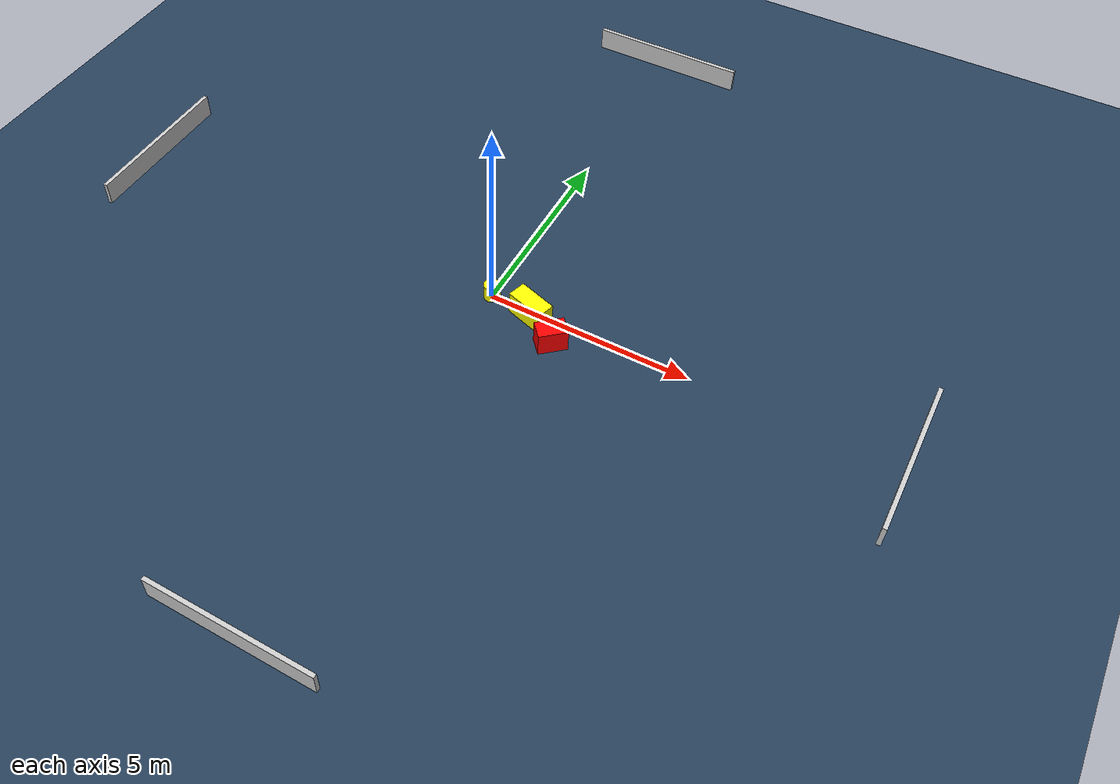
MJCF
<?xml version="1.0" ?>
<mujoco model="generated_environment">
  <option timestep="0.01" integrator="RK4" cone="elliptic"/>
  <default>
    <geom density="1"/>
  </default>
  <asset>
    <texture builtin="gradient" height="3072" name="skybox" rgb1="0.3 0.5 0.7" rgb2="0 0 0" type="skybox" width="512"/>
    <texture builtin="checker" height="300" name="groundplane" rgb1="0.2 0.3 0.4" rgb2="0.1 0.2 0.3" type="2d" width="300"/>
    <material name="groundplane" reflectance="0.2" texrepeat="5 5" texture="groundplane"/>
  </asset>
  <worldbody>
    <light dir="0 0 -1" directional="true" pos="0 0 1.5"/>
    <geom condim="3" friction="0.5 0.005 0.001" material="groundplane" name="floor" pos="0 0 0" size="0 0 0.05" type="plane"/>
    <body name="walls">
      <geom name="wall_1" condim="4" pos="-10.0 0.0 0.3" rgba="0.800000011920929 0.800000011920929 0.800000011920929 1.0" size="0.05 2.0 0.3" type="box"/>
      <geom name="wall_2" condim="4" pos="10.0 0.0 0.3" rgba="0.800000011920929 0.800000011920929 0.800000011920929 1.0" size="0.05 2.0 0.3" type="box"/>
      <geom name="wall_3" condim="4" pos="0.0 -10.0 0.3" rgba="0.800000011920929 0.800000011920929 0.800000011920929 1.0" size="2.0 0.05 0.3" type="box"/>
      <geom name="wall_4" condim="4" pos="0.0 10.0 0.3" rgba="0.800000011920929 0.800000011920929 0.800000011920929 1.0" size="2.0 0.05 0.3" type="box"/>
    </body>
    <body name="robot">
      <joint name="joint_x" type="slide" pos="0 0 0" axis="1 0 0"/>
      <joint name="joint_y" type="slide" pos="0 0 0" axis="0 1 0"/>
      <geom name="robot" type="cylinder" pos="0.0 0.0 0.2" size="0.2 0.2 0.0" mass="5.0" friction="1.0 0.005 0.0001" condim="4" rgba="1.0 1.0 0.0 1.0"/>
    </body>
    <body name="obstacle_1_movable">
      <geom name="obstacle_1_movable" condim="4" pos="1.0977985526868774 -0.13017738052434394 0.3" euler="0 0 72.64619043381035" friction="0.0 0.005 0.001" rgba="1.0 1.0 0.0 1.0" size="0.22966970273875578 0.48171673113151275 0.3" type="box" mass="0.1"/>
      <joint type="free"/>
    </body>
    <body name="obstacle_2_static">
      <geom name="obstacle_2_static" condim="4" pos="1.886173661505823 -0.6303019649697958 0.3" euler="0 0 311.2659908421952" friction="0.0 0.005 0.001" rgba="1.0 0.0 0.0 1.0" size="0.2219751548119654 0.3517333063083803 0.3" type="box"/>
    </body>
  </worldbody>
  <actuator>
    <motor name="actuator_x" joint="joint_x" gear="1" ctrlrange="-1 1"/>
    <motor name="actuator_y" joint="joint_y" gear="1" ctrlrange="-1 1"/>
  </actuator>
</mujoco>
